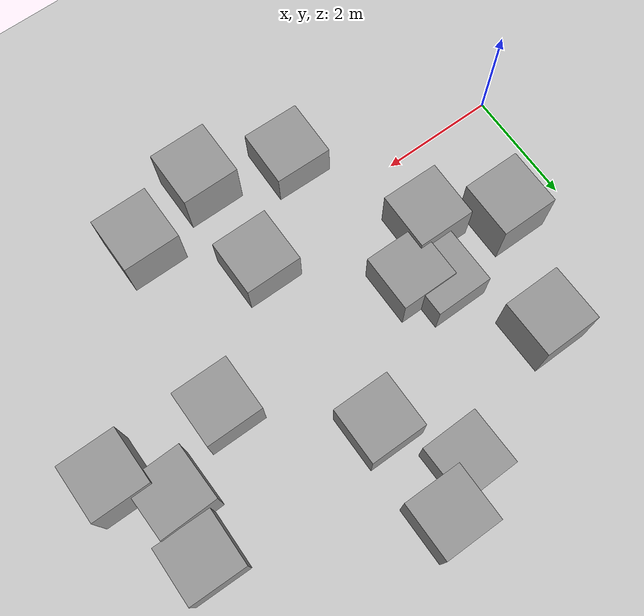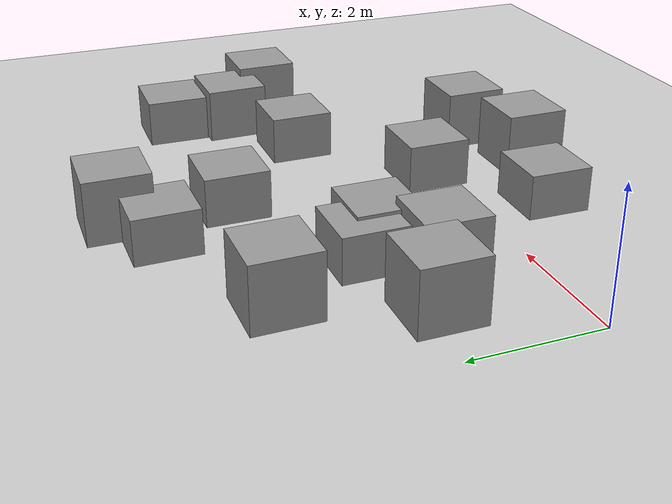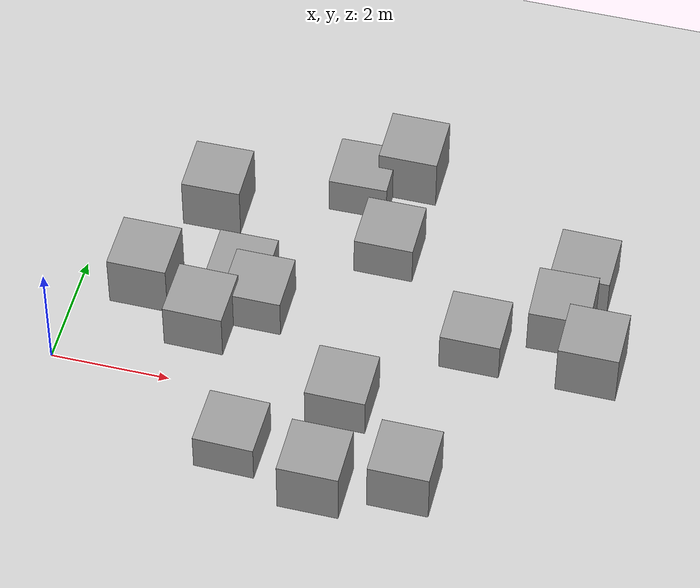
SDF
<sdf version='1.7'>
  <world name='default'>
    <light name='sun' type='directional'>
      <cast_shadows>1</cast_shadows>
      <pose>0 0 10 0 -0 0</pose>
      <diffuse>0.8 0.8 0.8 1</diffuse>
      <specular>0.2 0.2 0.2 1</specular>
      <attenuation>
        <range>1000</range>
        <constant>0.9</constant>
        <linear>0.01</linear>
        <quadratic>0.001</quadratic>
      </attenuation>
      <direction>-0.5 0.1 -0.9</direction>
      <spot>
        <inner_angle>0</inner_angle>
        <outer_angle>0</outer_angle>
        <falloff>0</falloff>
      </spot>
    </light>
    <model name='ground_plane'>
      <static>1</static>
      <link name='link'>
        <collision name='collision'>
          <geometry>
            <plane>
              <normal>0 0 1</normal>
              <size>100 100</size>
            </plane>
          </geometry>
          <surface>
            <contact>
              <collide_bitmask>65535</collide_bitmask>
              <ode/>
            </contact>
            <friction>
              <ode>
                <mu>100</mu>
                <mu2>50</mu2>
              </ode>
              <torsional>
                <ode/>
              </torsional>
            </friction>
            <bounce/>
          </surface>
          <max_contacts>10</max_contacts>
        </collision>
        <visual name='visual'>
          <cast_shadows>0</cast_shadows>
          <geometry>
            <plane>
              <normal>0 0 1</normal>
              <size>100 100</size>
            </plane>
          </geometry>
          <material>
            <script>
              <uri>file://media/materials/scripts/gazebo.material</uri>
              <name>Gazebo/Grey</name>
            </script>
          </material>
        </visual>
        <self_collide>0</self_collide>
        <enable_wind>0</enable_wind>
        <kinematic>0</kinematic>
      </link>
    </model>
    <gravity>0 0 -9.8</gravity>
    <magnetic_field>6e-06 2.3e-05 -4.2e-05</magnetic_field>
    <atmosphere type='adiabatic'/>
    <physics type='ode'>
      <max_step_size>0.001</max_step_size>
      <real_time_factor>1</real_time_factor>
      <real_time_update_rate>1000</real_time_update_rate>
    </physics>
    <scene>
      <ambient>0.4 0.4 0.4 1</ambient>
      <background>0.7 0.7 0.7 1</background>
      <shadows>1</shadows>
    </scene>
    <wind/>
    <spherical_coordinates>
      <surface_model>EARTH_WGS84</surface_model>
      <latitude_deg>0</latitude_deg>
      <longitude_deg>0</longitude_deg>
      <elevation>0</elevation>
      <heading_deg>0</heading_deg>
    </spherical_coordinates>
    <gui fullscreen='0'>
      <camera name='user_camera'>
        <pose>-2.70813 5.70495 19.0216 2e-06 1.5418 -1.5749</pose>
        <view_controller>orbit</view_controller>
        <projection_type>perspective</projection_type>
      </camera>
    </gui>
    <include>
      <uri>model://unit_box</uri>
      <name>sink</name>
      <pose>6.22500 -1.14500 0.44000 0 0 3.14159</pose>
      <scale>1.13 0.56 0.88</scale>
    </include>
<include>
      <uri>model://unit_box</uri>
      <name>sofa</name>
      <pose>2.63500 2.22250 0.20000 0 0 -3.13597</pose>
      <scale>1.78 0.86 0.40</scale>
    </include>
<include>
      <uri>model://unit_box</uri>
      <name>living_table</name>
      <pose>4.10750 4.71000 0.20000 0 0 0.01754</pose>
      <scale>1.14 0.81 0.40</scale>
    </include>
<include>
      <uri>model://unit_box</uri>
      <name>cabinet</name>
      <pose>8.16250 3.59500 0.24000 0 0 -1.58413</pose>
      <scale>0.75 0.28 0.48</scale>
    </include>
<include>
      <uri>model://unit_box</uri>
      <name>shelf</name>
      <pose>1.81250 3.73750 0.55500 0 0 1.58242</pose>
      <scale>0.86 0.36 1.11</scale>
    </include>
<include>
      <uri>model://unit_box</uri>
      <name>dining_table</name>
      <pose>7.99500 2.59000 0.37000 0 0 -1.54975</pose>
      <scale>0.95 0.51 0.74</scale>
    </include>
<include>
      <uri>model://unit_box</uri>
      <name>laundry_table</name>
      <pose>2.21500 1.20250 0.37000 0 0 -0.00909</pose>
      <scale>1.10 0.66 0.74</scale>
    </include>
<include>
      <uri>model://unit_box</uri>
      <name>washing_machine</name>
      <pose>3.37000 -1.08250 0.20000 0 0 3.12493</pose>
      <scale>0.60 0.58 0.40</scale>
    </include>
<include>
      <uri>model://unit_box</uri>
      <name>wall_0</name>
      <pose>4.86000 5.21503 0.50000 0 0 0</pose>
      <scale>7.36 0.20 1.00</scale>
    </include>
<include>
      <uri>model://unit_box</uri>
      <name>wall_1</name>
      <pose>8.63753 1.84393 0.50000 0 0 0</pose>
      <scale>0.20 6.54 1.00</scale>
    </include>
<include>
      <uri>model://unit_box</uri>
      <name>wall_2</name>
      <pose>4.86000 -1.52718 0.50000 0 0 0</pose>
      <scale>7.36 0.20 1.00</scale>
    </include>
<include>
      <uri>model://unit_box</uri>
      <name>wall_3</name>
      <pose>1.08247 1.84393 0.50000 0 0 0</pose>
      <scale>0.20 6.54 1.00</scale>
    </include>
<include>
      <uri>model://unit_box</uri>
      <name>room_wall_0</name>
      <pose>6.69877 1.84393 0.25000 0 0 0</pose>
      <scale>1.84 0.20 0.50</scale>
    </include>
<include>
      <uri>model://unit_box</uri>
      <name>room_wall_1</name>
      <pose>4.86000 3.47948 0.25000 0 0 0</pose>
      <scale>0.20 1.64 0.50</scale>
    </include>
<include>
      <uri>model://unit_box</uri>
      <name>room_wall_2</name>
      <pose>3.02124 1.84393 0.25000 0 0 0</pose>
      <scale>1.84 0.20 0.50</scale>
    </include>
<include>
      <uri>model://unit_box</uri>
      <name>room_wall_3</name>
      <pose>4.86000 0.20837 0.25000 0 0 0</pose>
      <scale>0.20 1.64 0.50</scale>
    </include>
  </world>
</sdf>

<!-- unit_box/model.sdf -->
<sdf version='1.7'>
  <model name='unit_box'>
    <link name='link'>
      <inertial>
        <mass>1</mass>
        <inertia>
          <ixx>0.166667</ixx>
          <ixy>0</ixy>
          <ixz>0</ixz>
          <iyy>0.166667</iyy>
          <iyz>0</iyz>
          <izz>0.166667</izz>
        </inertia>
        <pose>0 0 0 0 -0 0</pose>
      </inertial>
      <self_collide>0</self_collide>
      <enable_wind>0</enable_wind>
      <pose>0 0 0 0 -0 0</pose>
      <gravity>1</gravity>
      <kinematic>0</kinematic>
      <visual name='visual'>
        <geometry>
          <box>
            <size>1 1 1</size>
          </box>
        </geometry>
        <material>
          <script>
            <name>Gazebo/Grey</name>
            <uri>file://media/materials/scripts/gazebo.material</uri>
          </script>
          <shader type='pixel'>
            <normal_map>__default__</normal_map>
          </shader>
          <ambient>0.8 0.8 0.8 1</ambient>
          <diffuse>0.7 0.7 0.7 1</diffuse>
          <specular>0.01 0.01 0.01 1</specular>
          <emissive>0 0 0 1</emissive>
        </material>
        <pose>0 0 0 0 -0 0</pose>
        <transparency>0</transparency>
        <cast_shadows>1</cast_shadows>
      </visual>
      <collision name='collision'>
        <laser_retro>0</laser_retro>
        <max_contacts>10</max_contacts>
        <pose>0 0 0 0 -0 0</pose>
        <geometry>
          <box>
            <size>1 1 1</size>
          </box>
        </geometry>
        <surface>
          <friction>
            <ode>
              <mu>1</mu>
              <mu2>1</mu2>
              <fdir1>0 0 0</fdir1>
              <slip1>0</slip1>
              <slip2>0</slip2>
            </ode>
            <torsional>
              <coefficient>1</coefficient>
              <patch_radius>0</patch_radius>
              <surface_radius>0</surface_radius>
              <use_patch_radius>1</use_patch_radius>
              <ode>
                <slip>0</slip>
              </ode>
            </torsional>
          </friction>
          <bounce>
            <restitution_coefficient>0</restitution_coefficient>
            <threshold>1e+06</threshold>
          </bounce>
          <contact>
            <collide_without_contact>0</collide_without_contact>
            <collide_without_contact_bitmask>1</collide_without_contact_bitmask>
            <collide_bitmask>1</collide_bitmask>
            <ode>
              <soft_cfm>0</soft_cfm>
              <soft_erp>0.2</soft_erp>
              <kp>1e+13</kp>
              <kd>1</kd>
              <max_vel>0.01</max_vel>
              <min_depth>0</min_depth>
            </ode>
            <bullet>
              <split_impulse>1</split_impulse>
              <split_impulse_penetration_threshold>-0.01</split_impulse_penetration_threshold>
              <soft_cfm>0</soft_cfm>
              <soft_erp>0.2</soft_erp>
              <kp>1e+13</kp>
              <kd>1</kd>
            </bullet>
          </contact>
        </surface>
      </collision>
    </link>
    <static>0</static>
    <allow_auto_disable>1</allow_auto_disable>
  </model>
</sdf>
